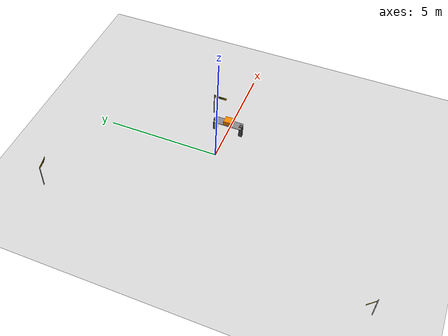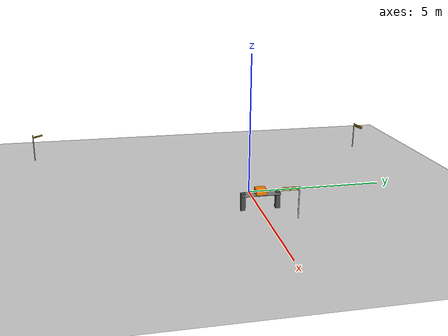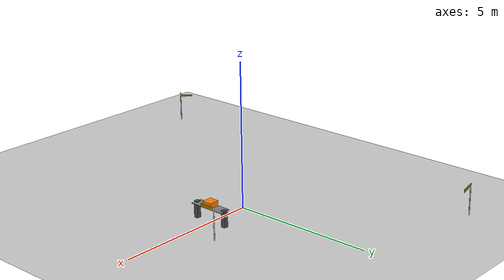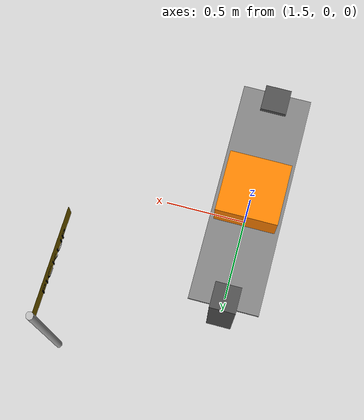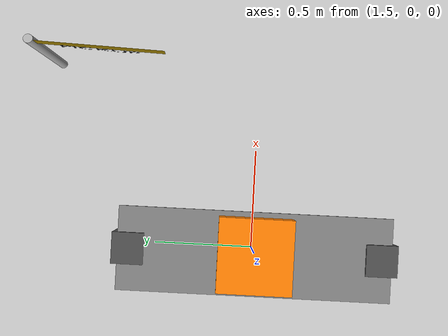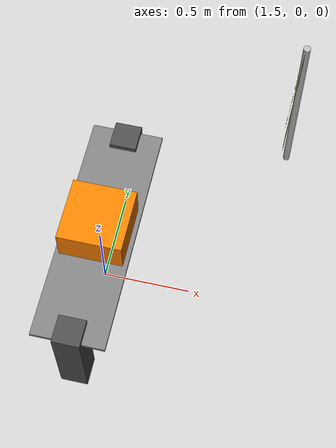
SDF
<sdf version="1.6">
 <world name="default">
  <scene>
   <ambient>0.8 0.8 0.8 1.0</ambient>
   <background>0.3 0.3 0.3 1.0</background>
   <shadows>false</shadows>
  </scene>
  <include><uri>model://pickup_zone_decal</uri><pose>2.4 1.0 0.0 0 0 -2.9</pose></include>
  <include><uri>model://storage_zone_decal</uri><pose>-4.3 6 0 0 0 -1.10</pose></include>
  <include><uri>model://parking_zone_decal</uri><pose>-5 -8 0 0 0 1</pose></include>
  <light type="directional" name="sun">
   <pose>0 0 10 0 0 0</pose>
   <diffuse>0.8 0.8 0.8 1</diffuse>
   <specular>0.2 0.2 0.2 1</specular>
   <attenuation>
    <range>1000</range>
    <constant>0.9</constant>
    <linear>0.01</linear>
    <quadratic>0.001</quadratic>
   </attenuation>
   <direction>-0.5 0.1 -0.9</direction>
  </light>
  <model name="ground_plane">
   <static>true</static>
   <link name="link">
    <collision name="collision"><geometry><plane><normal>0 0 1</normal></plane></geometry></collision>
    <visual name="visual">
     <geometry><plane><normal>0 0 1</normal><size>100 100</size></plane></geometry>
     <material>
      <ambient>0.8 0.8 0.8 1</ambient>
      <diffuse>0.8 0.8 0.8 1</diffuse>
      <specular>0.8 0.8 0.8 1</specular>
     </material>
    </visual>
   </link>
  </model>
  <model name="pickup_shelf_assembly">
   <static>false</static>
   <pose>1.5 0.0 0.0 0 0 0</pose>
   <link name="pillar_left">
    <pose>0.0 -0.60 0.30 0 0 0</pose>
    <inertial>
     <mass>5.0</mass>
     <inertia><ixx>0.283</ixx><ixy>0</ixy><ixz>0</ixz><iyy>0.283</iyy><iyz>0</iyz><izz>0.006</izz></inertia>
    </inertial>
    <collision name="collision">
     <geometry><box><size>0.15 0.15 0.58</size></box></geometry>
     <surface><friction><ode><mu>0.8</mu><mu2>0.8</mu2></ode></friction></surface>
    </collision>
    <visual name="visual">
     <geometry><box><size>0.15 0.15 0.58</size></box></geometry>
     <material><ambient>0.3 0.3 0.3 1</ambient><diffuse>0.3 0.3 0.3 1</diffuse></material>
    </visual>
   </link>
   <link name="pillar_right">
    <pose>0.0 0.60 0.30 0 0 0</pose>
    <inertial>
     <mass>5.0</mass>
     <inertia><ixx>0.283</ixx><ixy>0</ixy><ixz>0</ixz><iyy>0.283</iyy><iyz>0</iyz><izz>0.006</izz></inertia>
    </inertial>
    <collision name="collision">
     <geometry><box><size>0.15 0.15 0.58</size></box></geometry>
     <surface><friction><ode><mu>0.8</mu><mu2>0.8</mu2></ode></friction></surface>
    </collision>
    <visual name="visual">
     <geometry><box><size>0.15 0.15 0.58</size></box></geometry>
     <material><ambient>0.3 0.3 0.3 1</ambient><diffuse>0.3 0.3 0.3 1</diffuse></material>
    </visual>
   </link>
   <link name="shelf_beam">
    <pose>0.0 0.0 0.55 0 0 0</pose>
    <inertial>
     <mass>3.0</mass>
     <inertia><ixx>0.354</ixx><ixy>0</ixy><ixz>0</ixz><iyy>0.040</iyy><iyz>0</iyz><izz>0.394</izz></inertia>
    </inertial>
    <collision name="collision">
     <geometry><box><size>0.40 1.3 0.02</size></box></geometry>
     <surface><friction><ode><mu>2.0</mu><mu2>2.0</mu2></ode></friction></surface>
    </collision>
    <visual name="visual">
     <geometry><box><size>0.40 1.3 0.02</size></box></geometry>
     <material><ambient>0.5 0.5 0.5 1</ambient><diffuse>0.5 0.5 0.5 1</diffuse></material>
    </visual>
   </link>
   <link name="box">
    <pose>0.0 0.0 0.65 0 0 0</pose>
    <inertial>
     <mass>2.0</mass>
     <inertia><ixx>0.027</ixx><ixy>0</ixy><ixz>0</ixz><iyy>0.027</iyy><iyz>0</iyz><izz>0.041</izz></inertia>
    </inertial>
    <collision name="collision">
     <geometry><box><size>0.35 0.35 0.20</size></box></geometry>
     <surface><friction><ode><mu>1.0</mu><mu2>1.0</mu2></ode></friction></surface>
    </collision>
    <visual name="visual">
     <geometry><box><size>0.35 0.35 0.20</size></box></geometry>
     <material><ambient>1.0 0.5 0.0 1</ambient><diffuse>1.0 0.5 0.0 1</diffuse></material>
    </visual>
   </link>
   <joint name="beam_to_pillar_left" type="fixed"><parent>shelf_beam</parent><child>pillar_left</child></joint>
   <joint name="beam_to_pillar_right" type="fixed"><parent>shelf_beam</parent><child>pillar_right</child></joint>
   <joint name="beam_to_box" type="fixed"><parent>shelf_beam</parent><child>box</child></joint>
  </model>
 </world>
</sdf>

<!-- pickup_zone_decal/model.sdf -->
<sdf version="1.8">
  <model name="pickup_zone_decal">
    <static>true</static>
    <link name="link">
      <visual name="visual">
        <geometry>
          <mesh>
            <uri>model://pickup_zone_decal/meshes/pickup_sign.dae</uri>
            <scale>1.3 1.3 1.3</scale>
          </mesh>
        </geometry>
      </visual>
      <collision name="collision">
        <geometry>
          <mesh>
            <uri>model://pickup_zone_decal/meshes/pickup_sign.dae</uri>
          </mesh>
        </geometry>
      </collision>
    </link>
  </model>
</sdf>

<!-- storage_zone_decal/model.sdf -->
<sdf version="1.8">
  <model name="storage_zone_decal">
    <static>true</static>
    <link name="link">
      <visual name="visual">
        <geometry>
          <mesh>
            <uri>model://storage_zone_decal/meshes/storage_sign.dae</uri>
            <scale>1.3 1.3 1.3</scale>
          </mesh>
        </geometry>
      </visual>
      <collision name="collision">
        <geometry>
          <mesh>
            <uri>model://storage_zone_decal/meshes/storage_sign.dae</uri>
          </mesh>
        </geometry>
      </collision>
    </link>
  </model>
</sdf>

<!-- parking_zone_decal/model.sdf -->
<sdf version="1.8">
  <model name="parking_zone_decal">
    <static>true</static>
    <link name="link">
      <visual name="visual">
        <geometry>
          <mesh>
            <uri>model://parking_zone_decal/meshes/parking_sign.dae</uri>
            <scale>1.3 1.3 1.3</scale>
          </mesh>
        </geometry>
      </visual>
      <collision name="collision">
        <geometry>
          <mesh>
            <uri>model://parking_zone_decal/meshes/parking_sign.dae</uri>
          </mesh>
        </geometry>
      </collision>
    </link>
  </model>
</sdf>
